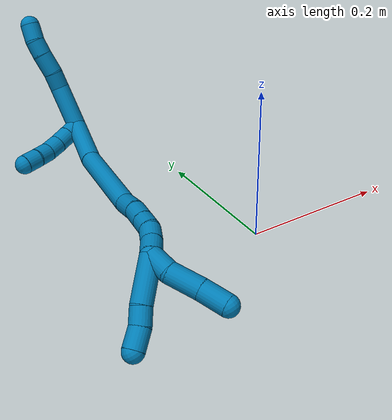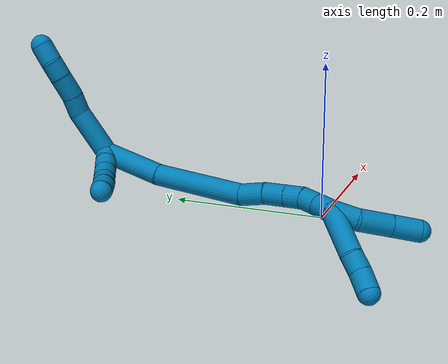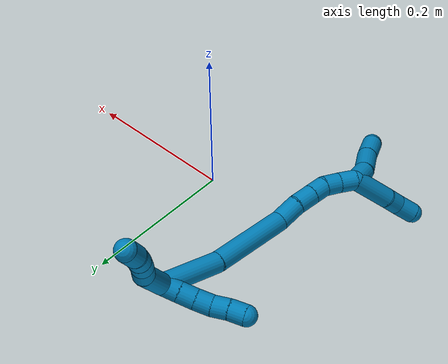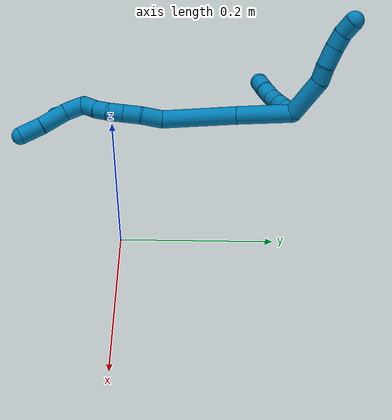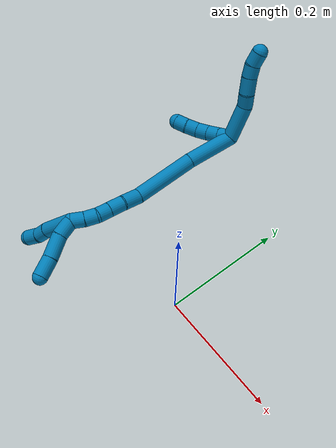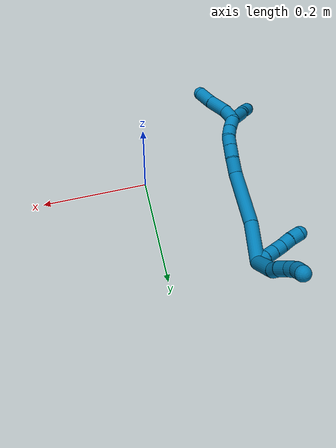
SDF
<sdf version="1.7">
 <world name="default">
  <model name="9">
   <static>0</static>
   <link name="9">
    <collision name="collision-cylinder-e_1_2_8">
     <pose>0.003138 0.00036 0.028895 -0.012471 0.108183 -0.000675</pose>
     <geometry><cylinder><radius>0.0125</radius><length>0.058133</length></cylinder></geometry>
     <surface>
      <friction><ode><mu>1.16</mu><mu2>1.16</mu2><slip1>0</slip1><slip2>0</slip2></ode></friction>
      <contact><ode><kp>1e+06</kp><kd>1</kd><max_vel>0</max_vel><min_depth>0.001</min_depth></ode></contact>
     </surface>
    </collision>
    <visual name="visual-cylinder-e_1_2_8">
     <pose>0.003138 0.00036 0.028895 -0.012471 0.108183 -0.000675</pose>
     <geometry><cylinder><radius>0.0125</radius><length>0.058133</length></cylinder></geometry>
     <material><ambient>0 0.490196 0.709804 1</ambient></material>
    </visual>
    <collision name="collision-cylinder-e_2_8_9">
     <pose>0.006976 -0.002795 0.068406 0.31981 0.062414 0.010069</pose>
     <geometry><cylinder><radius>0.0125</radius><length>0.022412</length></cylinder></geometry>
     <surface>
      <friction><ode><mu>1.16</mu><mu2>1.16</mu2><slip1>0</slip1><slip2>0</slip2></ode></friction>
      <contact><ode><kp>1e+06</kp><kd>1</kd><max_vel>0</max_vel><min_depth>0.001</min_depth></ode></contact>
     </surface>
    </collision>
    <visual name="visual-cylinder-e_2_8_9">
     <pose>0.006976 -0.002795 0.068406 0.31981 0.062414 0.010069</pose>
     <geometry><cylinder><radius>0.0125</radius><length>0.022412</length></cylinder></geometry>
     <material><ambient>0 0.490196 0.709804 1</ambient></material>
    </visual>
    <collision name="collision-cylinder-e_3_9_10">
     <pose>0.00706 -0.00902 0.09242 0.199462 -0.044937 -0.004497</pose>
     <geometry><cylinder><radius>0.0125</radius><length>0.027364</length></cylinder></geometry>
     <surface>
      <friction><ode><mu>1.16</mu><mu2>1.16</mu2><slip1>0</slip1><slip2>0</slip2></ode></friction>
      <contact><ode><kp>1e+06</kp><kd>1</kd><max_vel>0</max_vel><min_depth>0.001</min_depth></ode></contact>
     </surface>
    </collision>
    <visual name="visual-cylinder-e_3_9_10">
     <pose>0.00706 -0.00902 0.09242 0.199462 -0.044937 -0.004497</pose>
     <geometry><cylinder><radius>0.0125</radius><length>0.027364</length></cylinder></geometry>
     <material><ambient>0 0.490196 0.709804 1</ambient></material>
    </visual>
    <collision name="collision-cylinder-e_4_10_11">
     <pose>0.006756 -0.013155 0.11582 0.141739 0.030707 0.00218</pose>
     <geometry><cylinder><radius>0.0125</radius><length>0.020218</length></cylinder></geometry>
     <surface>
      <friction><ode><mu>1.16</mu><mu2>1.16</mu2><slip1>0</slip1><slip2>0</slip2></ode></friction>
      <contact><ode><kp>1e+06</kp><kd>1</kd><max_vel>0</max_vel><min_depth>0.001</min_depth></ode></contact>
     </surface>
    </collision>
    <visual name="visual-cylinder-e_4_10_11">
     <pose>0.006756 -0.013155 0.11582 0.141739 0.030707 0.00218</pose>
     <geometry><cylinder><radius>0.0125</radius><length>0.020218</length></cylinder></geometry>
     <material><ambient>0 0.490196 0.709804 1</ambient></material>
    </visual>
    <collision name="collision-cylinder-e_5_11_6">
     <pose>0.009525 -0.014323 0.136477 -0.024419 0.226748 -0.002781</pose>
     <geometry><cylinder><radius>0.0125</radius><length>0.021873</length></cylinder></geometry>
     <surface>
      <friction><ode><mu>1.16</mu><mu2>1.16</mu2><slip1>0</slip1><slip2>0</slip2></ode></friction>
      <contact><ode><kp>1e+06</kp><kd>1</kd><max_vel>0</max_vel><min_depth>0.001</min_depth></ode></contact>
     </surface>
    </collision>
    <visual name="visual-cylinder-e_5_11_6">
     <pose>0.009525 -0.014323 0.136477 -0.024419 0.226748 -0.002781</pose>
     <geometry><cylinder><radius>0.0125</radius><length>0.021873</length></cylinder></geometry>
     <material><ambient>0 0.490196 0.709804 1</ambient></material>
    </visual>
    <collision name="collision-cylinder-e_1_2_12">
     <pose>-0.008931 -0.00388 -0.002275 2.10118 -1.10429 -1.64348</pose>
     <geometry><cylinder><radius>0.0125</radius><length>0.02</length></cylinder></geometry>
     <surface>
      <friction><ode><mu>1.16</mu><mu2>1.16</mu2><slip1>0</slip1><slip2>0</slip2></ode></friction>
      <contact><ode><kp>1e+06</kp><kd>1</kd><max_vel>0</max_vel><min_depth>0.001</min_depth></ode></contact>
     </surface>
    </collision>
    <visual name="visual-cylinder-e_1_2_12">
     <pose>-0.008931 -0.00388 -0.002275 2.10118 -1.10429 -1.64348</pose>
     <geometry><cylinder><radius>0.0125</radius><length>0.02</length></cylinder></geometry>
     <material><ambient>0 0.490196 0.709804 1</ambient></material>
    </visual>
    <collision name="collision-cylinder-e_2_12_13">
     <pose>-0.026752 -0.011717 -0.006857 2.09845 -1.09496 -1.62988</pose>
     <geometry><cylinder><radius>0.0125</radius><length>0.02</length></cylinder></geometry>
     <surface>
      <friction><ode><mu>1.16</mu><mu2>1.16</mu2><slip1>0</slip1><slip2>0</slip2></ode></friction>
      <contact><ode><kp>1e+06</kp><kd>1</kd><max_vel>0</max_vel><min_depth>0.001</min_depth></ode></contact>
     </surface>
    </collision>
    <visual name="visual-cylinder-e_2_12_13">
     <pose>-0.026752 -0.011717 -0.006857 2.09845 -1.09496 -1.62988</pose>
     <geometry><cylinder><radius>0.0125</radius><length>0.02</length></cylinder></geometry>
     <material><ambient>0 0.490196 0.709804 1</ambient></material>
    </visual>
    <collision name="collision-cylinder-e_3_13_14">
     <pose>-0.044446 -0.020102 -0.01086 1.93671 -1.0769 -1.43033</pose>
     <geometry><cylinder><radius>0.0125</radius><length>0.02</length></cylinder></geometry>
     <surface>
      <friction><ode><mu>1.16</mu><mu2>1.16</mu2><slip1>0</slip1><slip2>0</slip2></ode></friction>
      <contact><ode><kp>1e+06</kp><kd>1</kd><max_vel>0</max_vel><min_depth>0.001</min_depth></ode></contact>
     </surface>
    </collision>
    <visual name="visual-cylinder-e_3_13_14">
     <pose>-0.044446 -0.020102 -0.01086 1.93671 -1.0769 -1.43033</pose>
     <geometry><cylinder><radius>0.0125</radius><length>0.02</length></cylinder></geometry>
     <material><ambient>0 0.490196 0.709804 1</ambient></material>
    </visual>
    <collision name="collision-cylinder-e_4_14_15">
     <pose>-0.061413 -0.030301 -0.012811 1.61502 -0.954791 -0.991359</pose>
     <geometry><cylinder><radius>0.0125</radius><length>0.02</length></cylinder></geometry>
     <surface>
      <friction><ode><mu>1.16</mu><mu2>1.16</mu2><slip1>0</slip1><slip2>0</slip2></ode></friction>
      <contact><ode><kp>1e+06</kp><kd>1</kd><max_vel>0</max_vel><min_depth>0.001</min_depth></ode></contact>
     </surface>
    </collision>
    <visual name="visual-cylinder-e_4_14_15">
     <pose>-0.061413 -0.030301 -0.012811 1.61502 -0.954791 -0.991359</pose>
     <geometry><cylinder><radius>0.0125</radius><length>0.02</length></cylinder></geometry>
     <material><ambient>0 0.490196 0.709804 1</ambient></material>
    </visual>
    <collision name="collision-cylinder-e_5_15_5">
     <pose>-0.0784 -0.040775 -0.013115 1.58109 -1.08117 -1.09028</pose>
     <geometry><cylinder><radius>0.0125</radius><length>0.02</length></cylinder></geometry>
     <surface>
      <friction><ode><mu>1.16</mu><mu2>1.16</mu2><slip1>0</slip1><slip2>0</slip2></ode></friction>
      <contact><ode><kp>1e+06</kp><kd>1</kd><max_vel>0</max_vel><min_depth>0.001</min_depth></ode></contact>
     </surface>
    </collision>
    <visual name="visual-cylinder-e_5_15_5">
     <pose>-0.0784 -0.040775 -0.013115 1.58109 -1.08117 -1.09028</pose>
     <geometry><cylinder><radius>0.0125</radius><length>0.02</length></cylinder></geometry>
     <material><ambient>0 0.490196 0.709804 1</ambient></material>
    </visual>
    <collision name="collision-cylinder-e_1_2_16">
     <pose>-0.006069 -0.028876 -0.024798 2.28037 -0.158106 -0.341543</pose>
     <geometry><cylinder><radius>0.0125</radius><length>0.077088</length></cylinder></geometry>
     <surface>
      <friction><ode><mu>1.16</mu><mu2>1.16</mu2><slip1>0</slip1><slip2>0</slip2></ode></friction>
      <contact><ode><kp>1e+06</kp><kd>1</kd><max_vel>0</max_vel><min_depth>0.001</min_depth></ode></contact>
     </surface>
    </collision>
    <visual name="visual-cylinder-e_1_2_16">
     <pose>-0.006069 -0.028876 -0.024798 2.28037 -0.158106 -0.341543</pose>
     <geometry><cylinder><radius>0.0125</radius><length>0.077088</length></cylinder></geometry>
     <material><ambient>0 0.490196 0.709804 1</ambient></material>
    </visual>
    <collision name="collision-cylinder-e_2_16_17">
     <pose>-0.011598 -0.098889 -0.08167 2.23302 0.010337 0.021166</pose>
     <geometry><cylinder><radius>0.0125</radius><length>0.10433</length></cylinder></geometry>
     <surface>
      <friction><ode><mu>1.16</mu><mu2>1.16</mu2><slip1>0</slip1><slip2>0</slip2></ode></friction>
      <contact><ode><kp>1e+06</kp><kd>1</kd><max_vel>0</max_vel><min_depth>0.001</min_depth></ode></contact>
     </surface>
    </collision>
    <visual name="visual-cylinder-e_2_16_17">
     <pose>-0.011598 -0.098889 -0.08167 2.23302 0.010337 0.021166</pose>
     <geometry><cylinder><radius>0.0125</radius><length>0.10433</length></cylinder></geometry>
     <material><ambient>0 0.490196 0.709804 1</ambient></material>
    </visual>
    <collision name="collision-cylinder-e_3_17_18">
     <pose>-0.009804 -0.154024 -0.119239 1.9449 0.083262 0.122056</pose>
     <geometry><cylinder><radius>0.0125</radius><length>0.030182</length></cylinder></geometry>
     <surface>
      <friction><ode><mu>1.16</mu><mu2>1.16</mu2><slip1>0</slip1><slip2>0</slip2></ode></friction>
      <contact><ode><kp>1e+06</kp><kd>1</kd><max_vel>0</max_vel><min_depth>0.001</min_depth></ode></contact>
     </surface>
    </collision>
    <visual name="visual-cylinder-e_3_17_18">
     <pose>-0.009804 -0.154024 -0.119239 1.9449 0.083262 0.122056</pose>
     <geometry><cylinder><radius>0.0125</radius><length>0.030182</length></cylinder></geometry>
     <material><ambient>0 0.490196 0.709804 1</ambient></material>
    </visual>
    <collision name="collision-cylinder-e_4_18_19">
     <pose>-0.008878 -0.179001 -0.130735 2.071 -0.026342 -0.044414</pose>
     <geometry><cylinder><radius>0.0125</radius><length>0.025031</length></cylinder></geometry>
     <surface>
      <friction><ode><mu>1.16</mu><mu2>1.16</mu2><slip1>0</slip1><slip2>0</slip2></ode></friction>
      <contact><ode><kp>1e+06</kp><kd>1</kd><max_vel>0</max_vel><min_depth>0.001</min_depth></ode></contact>
     </surface>
    </collision>
    <visual name="visual-cylinder-e_4_18_19">
     <pose>-0.008878 -0.179001 -0.130735 2.071 -0.026342 -0.044414</pose>
     <geometry><cylinder><radius>0.0125</radius><length>0.025031</length></cylinder></geometry>
     <material><ambient>0 0.490196 0.709804 1</ambient></material>
    </visual>
    <collision name="collision-cylinder-e_5_19_20">
     <pose>-0.009485 -0.198872 -0.141622 2.0733 -0.027329 -0.046198</pose>
     <geometry><cylinder><radius>0.0125</radius><length>0.020302</length></cylinder></geometry>
     <surface>
      <friction><ode><mu>1.16</mu><mu2>1.16</mu2><slip1>0</slip1><slip2>0</slip2></ode></friction>
      <contact><ode><kp>1e+06</kp><kd>1</kd><max_vel>0</max_vel><min_depth>0.001</min_depth></ode></contact>
     </surface>
    </collision>
    <visual name="visual-cylinder-e_5_19_20">
     <pose>-0.009485 -0.198872 -0.141622 2.0733 -0.027329 -0.046198</pose>
     <geometry><cylinder><radius>0.0125</radius><length>0.020302</length></cylinder></geometry>
     <material><ambient>0 0.490196 0.709804 1</ambient></material>
    </visual>
    <collision name="collision-cylinder-e_6_20_21">
     <pose>-0.013358 -0.21601 -0.151785 2.13999 -0.352019 -0.628344</pose>
     <geometry><cylinder><radius>0.0125</radius><length>0.020856</length></cylinder></geometry>
     <surface>
      <friction><ode><mu>1.16</mu><mu2>1.16</mu2><slip1>0</slip1><slip2>0</slip2></ode></friction>
      <contact><ode><kp>1e+06</kp><kd>1</kd><max_vel>0</max_vel><min_depth>0.001</min_depth></ode></contact>
     </surface>
    </collision>
    <visual name="visual-cylinder-e_6_20_21">
     <pose>-0.013358 -0.21601 -0.151785 2.13999 -0.352019 -0.628344</pose>
     <geometry><cylinder><radius>0.0125</radius><length>0.020856</length></cylinder></geometry>
     <material><ambient>0 0.490196 0.709804 1</ambient></material>
    </visual>
    <collision name="collision-cylinder-e_7_21_1">
     <pose>-0.021848 -0.233227 -0.161407 2.0219 -0.456407 -0.709765</pose>
     <geometry><cylinder><radius>0.0125</radius><length>0.022211</length></cylinder></geometry>
     <surface>
      <friction><ode><mu>1.16</mu><mu2>1.16</mu2><slip1>0</slip1><slip2>0</slip2></ode></friction>
      <contact><ode><kp>1e+06</kp><kd>1</kd><max_vel>0</max_vel><min_depth>0.001</min_depth></ode></contact>
     </surface>
    </collision>
    <visual name="visual-cylinder-e_7_21_1">
     <pose>-0.021848 -0.233227 -0.161407 2.0219 -0.456407 -0.709765</pose>
     <geometry><cylinder><radius>0.0125</radius><length>0.022211</length></cylinder></geometry>
     <material><ambient>0 0.490196 0.709804 1</ambient></material>
    </visual>
    <collision name="collision-cylinder-e_1_1_22">
     <pose>-0.044911 -0.249487 -0.184313 2.76741 -0.738938 -2.23223</pose>
     <geometry><cylinder><radius>0.0125</radius><length>0.05395</length></cylinder></geometry>
     <surface>
      <friction><ode><mu>1.16</mu><mu2>1.16</mu2><slip1>0</slip1><slip2>0</slip2></ode></friction>
      <contact><ode><kp>1e+06</kp><kd>1</kd><max_vel>0</max_vel><min_depth>0.001</min_depth></ode></contact>
     </surface>
    </collision>
    <visual name="visual-cylinder-e_1_1_22">
     <pose>-0.044911 -0.249487 -0.184313 2.76741 -0.738938 -2.23223</pose>
     <geometry><cylinder><radius>0.0125</radius><length>0.05395</length></cylinder></geometry>
     <material><ambient>0 0.490196 0.709804 1</ambient></material>
    </visual>
    <collision name="collision-cylinder-e_2_22_23">
     <pose>-0.068992 -0.259239 -0.211195 2.85371 -0.598128 -2.26267</pose>
     <geometry><cylinder><radius>0.0125</radius><length>0.021005</length></cylinder></geometry>
     <surface>
      <friction><ode><mu>1.16</mu><mu2>1.16</mu2><slip1>0</slip1><slip2>0</slip2></ode></friction>
      <contact><ode><kp>1e+06</kp><kd>1</kd><max_vel>0</max_vel><min_depth>0.001</min_depth></ode></contact>
     </surface>
    </collision>
    <visual name="visual-cylinder-e_2_22_23">
     <pose>-0.068992 -0.259239 -0.211195 2.85371 -0.598128 -2.26267</pose>
     <geometry><cylinder><radius>0.0125</radius><length>0.021005</length></cylinder></geometry>
     <material><ambient>0 0.490196 0.709804 1</ambient></material>
    </visual>
    <collision name="collision-cylinder-e_3_23_4">
     <pose>-0.08408 -0.265288 -0.22725 2.70756 -0.822126 -2.20499</pose>
     <geometry><cylinder><radius>0.0125</radius><length>0.025045</length></cylinder></geometry>
     <surface>
      <friction><ode><mu>1.16</mu><mu2>1.16</mu2><slip1>0</slip1><slip2>0</slip2></ode></friction>
      <contact><ode><kp>1e+06</kp><kd>1</kd><max_vel>0</max_vel><min_depth>0.001</min_depth></ode></contact>
     </surface>
    </collision>
    <visual name="visual-cylinder-e_3_23_4">
     <pose>-0.08408 -0.265288 -0.22725 2.70756 -0.822126 -2.20499</pose>
     <geometry><cylinder><radius>0.0125</radius><length>0.025045</length></cylinder></geometry>
     <material><ambient>0 0.490196 0.709804 1</ambient></material>
    </visual>
    <collision name="collision-cylinder-e_1_1_24">
     <pose>-0.024052 -0.250534 -0.176931 2.50088 0.190623 0.561089</pose>
     <geometry><cylinder><radius>0.0125</radius><length>0.028403</length></cylinder></geometry>
     <surface>
      <friction><ode><mu>1.16</mu><mu2>1.16</mu2><slip1>0</slip1><slip2>0</slip2></ode></friction>
      <contact><ode><kp>1e+06</kp><kd>1</kd><max_vel>0</max_vel><min_depth>0.001</min_depth></ode></contact>
     </surface>
    </collision>
    <visual name="visual-cylinder-e_1_1_24">
     <pose>-0.024052 -0.250534 -0.176931 2.50088 0.190623 0.561089</pose>
     <geometry><cylinder><radius>0.0125</radius><length>0.028403</length></cylinder></geometry>
     <material><ambient>0 0.490196 0.709804 1</ambient></material>
    </visual>
    <collision name="collision-cylinder-e_2_24_25">
     <pose>-0.012353 -0.267881 -0.202902 2.5944 0.479605 1.43342</pose>
     <geometry><cylinder><radius>0.0125</radius><length>0.039048</length></cylinder></geometry>
     <surface>
      <friction><ode><mu>1.16</mu><mu2>1.16</mu2><slip1>0</slip1><slip2>0</slip2></ode></friction>
      <contact><ode><kp>1e+06</kp><kd>1</kd><max_vel>0</max_vel><min_depth>0.001</min_depth></ode></contact>
     </surface>
    </collision>
    <visual name="visual-cylinder-e_2_24_25">
     <pose>-0.012353 -0.267881 -0.202902 2.5944 0.479605 1.43342</pose>
     <geometry><cylinder><radius>0.0125</radius><length>0.039048</length></cylinder></geometry>
     <material><ambient>0 0.490196 0.709804 1</ambient></material>
    </visual>
    <collision name="collision-cylinder-e_3_25_3">
     <pose>0.003022 -0.285652 -0.229844 2.51699 0.40188 1.12563</pose>
     <geometry><cylinder><radius>0.0125</radius><length>0.03255</length></cylinder></geometry>
     <surface>
      <friction><ode><mu>1.16</mu><mu2>1.16</mu2><slip1>0</slip1><slip2>0</slip2></ode></friction>
      <contact><ode><kp>1e+06</kp><kd>1</kd><max_vel>0</max_vel><min_depth>0.001</min_depth></ode></contact>
     </surface>
    </collision>
    <visual name="visual-cylinder-e_3_25_3">
     <pose>0.003022 -0.285652 -0.229844 2.51699 0.40188 1.12563</pose>
     <geometry><cylinder><radius>0.0125</radius><length>0.03255</length></cylinder></geometry>
     <material><ambient>0 0.490196 0.709804 1</ambient></material>
    </visual>
    <collision name="collision-sphere-3">
     <pose>0.009388 -0.294411 -0.241994 0 -0 0</pose>
     <geometry><sphere><radius>0.0125</radius></sphere></geometry>
     <surface>
      <friction><ode><mu>1.16</mu><mu2>1.16</mu2><slip1>0</slip1><slip2>0</slip2></ode></friction>
      <contact><ode><kp>1e+06</kp><kd>1</kd><max_vel>0</max_vel><min_depth>0.001</min_depth></ode></contact>
     </surface>
    </collision>
    <visual name="visual-sphere-3">
     <pose>0.009388 -0.294411 -0.241994 0 -0 0</pose>
     <geometry><sphere><radius>0.0125</radius></sphere></geometry>
     <material><ambient>0 0.490196 0.709804 1</ambient></material>
    </visual>
    <collision name="collision-sphere-25">
     <pose>-0.003344 -0.276894 -0.217694 0 -0 0</pose>
     <geometry><sphere><radius>0.0125</radius></sphere></geometry>
     <surface>
      <friction><ode><mu>1.16</mu><mu2>1.16</mu2><slip1>0</slip1><slip2>0</slip2></ode></friction>
      <contact><ode><kp>1e+06</kp><kd>1</kd><max_vel>0</max_vel><min_depth>0.001</min_depth></ode></contact>
     </surface>
    </collision>
    <visual name="visual-sphere-25">
     <pose>-0.003344 -0.276894 -0.217694 0 -0 0</pose>
     <geometry><sphere><radius>0.0125</radius></sphere></geometry>
     <material><ambient>0 0.490196 0.709804 1</ambient></material>
    </visual>
    <collision name="collision-sphere-24">
     <pose>-0.021361 -0.258869 -0.18811 0 -0 0</pose>
     <geometry><sphere><radius>0.0125</radius></sphere></geometry>
     <surface>
      <friction><ode><mu>1.16</mu><mu2>1.16</mu2><slip1>0</slip1><slip2>0</slip2></ode></friction>
      <contact><ode><kp>1e+06</kp><kd>1</kd><max_vel>0</max_vel><min_depth>0.001</min_depth></ode></contact>
     </surface>
    </collision>
    <visual name="visual-sphere-24">
     <pose>-0.021361 -0.258869 -0.18811 0 -0 0</pose>
     <geometry><sphere><radius>0.0125</radius></sphere></geometry>
     <material><ambient>0 0.490196 0.709804 1</ambient></material>
    </visual>
    <collision name="collision-sphere-4">
     <pose>-0.093254 -0.268873 -0.234983 0 -0 0</pose>
     <geometry><sphere><radius>0.0125</radius></sphere></geometry>
     <surface>
      <friction><ode><mu>1.16</mu><mu2>1.16</mu2><slip1>0</slip1><slip2>0</slip2></ode></friction>
      <contact><ode><kp>1e+06</kp><kd>1</kd><max_vel>0</max_vel><min_depth>0.001</min_depth></ode></contact>
     </surface>
    </collision>
    <visual name="visual-sphere-4">
     <pose>-0.093254 -0.268873 -0.234983 0 -0 0</pose>
     <geometry><sphere><radius>0.0125</radius></sphere></geometry>
     <material><ambient>0 0.490196 0.709804 1</ambient></material>
    </visual>
    <collision name="collision-sphere-23">
     <pose>-0.074906 -0.261704 -0.219517 0 -0 0</pose>
     <geometry><sphere><radius>0.0125</radius></sphere></geometry>
     <surface>
      <friction><ode><mu>1.16</mu><mu2>1.16</mu2><slip1>0</slip1><slip2>0</slip2></ode></friction>
      <contact><ode><kp>1e+06</kp><kd>1</kd><max_vel>0</max_vel><min_depth>0.001</min_depth></ode></contact>
     </surface>
    </collision>
    <visual name="visual-sphere-23">
     <pose>-0.074906 -0.261704 -0.219517 0 -0 0</pose>
     <geometry><sphere><radius>0.0125</radius></sphere></geometry>
     <material><ambient>0 0.490196 0.709804 1</ambient></material>
    </visual>
    <collision name="collision-sphere-22">
     <pose>-0.063078 -0.256775 -0.202872 0 -0 0</pose>
     <geometry><sphere><radius>0.0125</radius></sphere></geometry>
     <surface>
      <friction><ode><mu>1.16</mu><mu2>1.16</mu2><slip1>0</slip1><slip2>0</slip2></ode></friction>
      <contact><ode><kp>1e+06</kp><kd>1</kd><max_vel>0</max_vel><min_depth>0.001</min_depth></ode></contact>
     </surface>
    </collision>
    <visual name="visual-sphere-22">
     <pose>-0.063078 -0.256775 -0.202872 0 -0 0</pose>
     <geometry><sphere><radius>0.0125</radius></sphere></geometry>
     <material><ambient>0 0.490196 0.709804 1</ambient></material>
    </visual>
    <collision name="collision-sphere-1">
     <pose>-0.026743 -0.242199 -0.165753 0 -0 0</pose>
     <geometry><sphere><radius>0.0125</radius></sphere></geometry>
     <surface>
      <friction><ode><mu>1.16</mu><mu2>1.16</mu2><slip1>0</slip1><slip2>0</slip2></ode></friction>
      <contact><ode><kp>1e+06</kp><kd>1</kd><max_vel>0</max_vel><min_depth>0.001</min_depth></ode></contact>
     </surface>
    </collision>
    <visual name="visual-sphere-1">
     <pose>-0.026743 -0.242199 -0.165753 0 -0 0</pose>
     <geometry><sphere><radius>0.0125</radius></sphere></geometry>
     <material><ambient>0 0.490196 0.709804 1</ambient></material>
    </visual>
    <collision name="collision-sphere-21">
     <pose>-0.016954 -0.224256 -0.157061 0 -0 0</pose>
     <geometry><sphere><radius>0.0125</radius></sphere></geometry>
     <surface>
      <friction><ode><mu>1.16</mu><mu2>1.16</mu2><slip1>0</slip1><slip2>0</slip2></ode></friction>
      <contact><ode><kp>1e+06</kp><kd>1</kd><max_vel>0</max_vel><min_depth>0.001</min_depth></ode></contact>
     </surface>
    </collision>
    <visual name="visual-sphere-21">
     <pose>-0.016954 -0.224256 -0.157061 0 -0 0</pose>
     <geometry><sphere><radius>0.0125</radius></sphere></geometry>
     <material><ambient>0 0.490196 0.709804 1</ambient></material>
    </visual>
    <collision name="collision-sphere-6">
     <pose>0.011983 -0.014062 0.14713 0 -0 0</pose>
     <geometry><sphere><radius>0.0125</radius></sphere></geometry>
     <surface>
      <friction><ode><mu>1.16</mu><mu2>1.16</mu2><slip1>0</slip1><slip2>0</slip2></ode></friction>
      <contact><ode><kp>1e+06</kp><kd>1</kd><max_vel>0</max_vel><min_depth>0.001</min_depth></ode></contact>
     </surface>
    </collision>
    <visual name="visual-sphere-6">
     <pose>0.011983 -0.014062 0.14713 0 -0 0</pose>
     <geometry><sphere><radius>0.0125</radius></sphere></geometry>
     <material><ambient>0 0.490196 0.709804 1</ambient></material>
    </visual>
    <collision name="collision-sphere-11">
     <pose>0.007066 -0.014583 0.125823 0 -0 0</pose>
     <geometry><sphere><radius>0.0125</radius></sphere></geometry>
     <surface>
      <friction><ode><mu>1.16</mu><mu2>1.16</mu2><slip1>0</slip1><slip2>0</slip2></ode></friction>
      <contact><ode><kp>1e+06</kp><kd>1</kd><max_vel>0</max_vel><min_depth>0.001</min_depth></ode></contact>
     </surface>
    </collision>
    <visual name="visual-sphere-11">
     <pose>0.007066 -0.014583 0.125823 0 -0 0</pose>
     <geometry><sphere><radius>0.0125</radius></sphere></geometry>
     <material><ambient>0 0.490196 0.709804 1</ambient></material>
    </visual>
    <collision name="collision-sphere-10">
     <pose>0.006445 -0.011728 0.105818 0 -0 0</pose>
     <geometry><sphere><radius>0.0125</radius></sphere></geometry>
     <surface>
      <friction><ode><mu>1.16</mu><mu2>1.16</mu2><slip1>0</slip1><slip2>0</slip2></ode></friction>
      <contact><ode><kp>1e+06</kp><kd>1</kd><max_vel>0</max_vel><min_depth>0.001</min_depth></ode></contact>
     </surface>
    </collision>
    <visual name="visual-sphere-10">
     <pose>0.006445 -0.011728 0.105818 0 -0 0</pose>
     <geometry><sphere><radius>0.0125</radius></sphere></geometry>
     <material><ambient>0 0.490196 0.709804 1</ambient></material>
    </visual>
    <collision name="collision-sphere-9">
     <pose>0.007675 -0.006311 0.079023 0 -0 0</pose>
     <geometry><sphere><radius>0.0125</radius></sphere></geometry>
     <surface>
      <friction><ode><mu>1.16</mu><mu2>1.16</mu2><slip1>0</slip1><slip2>0</slip2></ode></friction>
      <contact><ode><kp>1e+06</kp><kd>1</kd><max_vel>0</max_vel><min_depth>0.001</min_depth></ode></contact>
     </surface>
    </collision>
    <visual name="visual-sphere-9">
     <pose>0.007675 -0.006311 0.079023 0 -0 0</pose>
     <geometry><sphere><radius>0.0125</radius></sphere></geometry>
     <material><ambient>0 0.490196 0.709804 1</ambient></material>
    </visual>
    <collision name="collision-sphere-2">
     <geometry><sphere><radius>0.0125</radius></sphere></geometry>
     <surface>
      <friction><ode><mu>1.16</mu><mu2>1.16</mu2><slip1>0</slip1><slip2>0</slip2></ode></friction>
      <contact><ode><kp>1e+06</kp><kd>1</kd><max_vel>0</max_vel><min_depth>0.001</min_depth></ode></contact>
     </surface>
    </collision>
    <visual name="visual-sphere-2">
     <geometry><sphere><radius>0.0125</radius></sphere></geometry>
     <material><ambient>0 0.490196 0.709804 1</ambient></material>
    </visual>
    <collision name="collision-sphere-19">
     <pose>-0.009208 -0.189979 -0.136735 0 -0 0</pose>
     <geometry><sphere><radius>0.0125</radius></sphere></geometry>
     <surface>
      <friction><ode><mu>1.16</mu><mu2>1.16</mu2><slip1>0</slip1><slip2>0</slip2></ode></friction>
      <contact><ode><kp>1e+06</kp><kd>1</kd><max_vel>0</max_vel><min_depth>0.001</min_depth></ode></contact>
     </surface>
    </collision>
    <visual name="visual-sphere-19">
     <pose>-0.009208 -0.189979 -0.136735 0 -0 0</pose>
     <geometry><sphere><radius>0.0125</radius></sphere></geometry>
     <material><ambient>0 0.490196 0.709804 1</ambient></material>
    </visual>
    <collision name="collision-sphere-8">
     <pose>0.006277 0.000721 0.057789 0 -0 0</pose>
     <geometry><sphere><radius>0.0125</radius></sphere></geometry>
     <surface>
      <friction><ode><mu>1.16</mu><mu2>1.16</mu2><slip1>0</slip1><slip2>0</slip2></ode></friction>
      <contact><ode><kp>1e+06</kp><kd>1</kd><max_vel>0</max_vel><min_depth>0.001</min_depth></ode></contact>
     </surface>
    </collision>
    <visual name="visual-sphere-8">
     <pose>0.006277 0.000721 0.057789 0 -0 0</pose>
     <geometry><sphere><radius>0.0125</radius></sphere></geometry>
     <material><ambient>0 0.490196 0.709804 1</ambient></material>
    </visual>
    <collision name="collision-sphere-12">
     <pose>-0.017863 -0.00776 -0.00455 0 -0 0</pose>
     <geometry><sphere><radius>0.0125</radius></sphere></geometry>
     <surface>
      <friction><ode><mu>1.16</mu><mu2>1.16</mu2><slip1>0</slip1><slip2>0</slip2></ode></friction>
      <contact><ode><kp>1e+06</kp><kd>1</kd><max_vel>0</max_vel><min_depth>0.001</min_depth></ode></contact>
     </surface>
    </collision>
    <visual name="visual-sphere-12">
     <pose>-0.017863 -0.00776 -0.00455 0 -0 0</pose>
     <geometry><sphere><radius>0.0125</radius></sphere></geometry>
     <material><ambient>0 0.490196 0.709804 1</ambient></material>
    </visual>
    <collision name="collision-sphere-13">
     <pose>-0.035641 -0.015675 -0.009163 0 -0 0</pose>
     <geometry><sphere><radius>0.0125</radius></sphere></geometry>
     <surface>
      <friction><ode><mu>1.16</mu><mu2>1.16</mu2><slip1>0</slip1><slip2>0</slip2></ode></friction>
      <contact><ode><kp>1e+06</kp><kd>1</kd><max_vel>0</max_vel><min_depth>0.001</min_depth></ode></contact>
     </surface>
    </collision>
    <visual name="visual-sphere-13">
     <pose>-0.035641 -0.015675 -0.009163 0 -0 0</pose>
     <geometry><sphere><radius>0.0125</radius></sphere></geometry>
     <material><ambient>0 0.490196 0.709804 1</ambient></material>
    </visual>
    <collision name="collision-sphere-14">
     <pose>-0.053251 -0.024528 -0.012556 0 -0 0</pose>
     <geometry><sphere><radius>0.0125</radius></sphere></geometry>
     <surface>
      <friction><ode><mu>1.16</mu><mu2>1.16</mu2><slip1>0</slip1><slip2>0</slip2></ode></friction>
      <contact><ode><kp>1e+06</kp><kd>1</kd><max_vel>0</max_vel><min_depth>0.001</min_depth></ode></contact>
     </surface>
    </collision>
    <visual name="visual-sphere-14">
     <pose>-0.053251 -0.024528 -0.012556 0 -0 0</pose>
     <geometry><sphere><radius>0.0125</radius></sphere></geometry>
     <material><ambient>0 0.490196 0.709804 1</ambient></material>
    </visual>
    <collision name="collision-sphere-15">
     <pose>-0.069575 -0.036073 -0.013067 0 -0 0</pose>
     <geometry><sphere><radius>0.0125</radius></sphere></geometry>
     <surface>
      <friction><ode><mu>1.16</mu><mu2>1.16</mu2><slip1>0</slip1><slip2>0</slip2></ode></friction>
      <contact><ode><kp>1e+06</kp><kd>1</kd><max_vel>0</max_vel><min_depth>0.001</min_depth></ode></contact>
     </surface>
    </collision>
    <visual name="visual-sphere-15">
     <pose>-0.069575 -0.036073 -0.013067 0 -0 0</pose>
     <geometry><sphere><radius>0.0125</radius></sphere></geometry>
     <material><ambient>0 0.490196 0.709804 1</ambient></material>
    </visual>
    <collision name="collision-sphere-5">
     <pose>-0.087225 -0.045478 -0.013163 0 -0 0</pose>
     <geometry><sphere><radius>0.0125</radius></sphere></geometry>
     <surface>
      <friction><ode><mu>1.16</mu><mu2>1.16</mu2><slip1>0</slip1><slip2>0</slip2></ode></friction>
      <contact><ode><kp>1e+06</kp><kd>1</kd><max_vel>0</max_vel><min_depth>0.001</min_depth></ode></contact>
     </surface>
    </collision>
    <visual name="visual-sphere-5">
     <pose>-0.087225 -0.045478 -0.013163 0 -0 0</pose>
     <geometry><sphere><radius>0.0125</radius></sphere></geometry>
     <material><ambient>0 0.490196 0.709804 1</ambient></material>
    </visual>
    <collision name="collision-sphere-16">
     <pose>-0.012137 -0.057752 -0.049597 0 -0 0</pose>
     <geometry><sphere><radius>0.0125</radius></sphere></geometry>
     <surface>
      <friction><ode><mu>1.16</mu><mu2>1.16</mu2><slip1>0</slip1><slip2>0</slip2></ode></friction>
      <contact><ode><kp>1e+06</kp><kd>1</kd><max_vel>0</max_vel><min_depth>0.001</min_depth></ode></contact>
     </surface>
    </collision>
    <visual name="visual-sphere-16">
     <pose>-0.012137 -0.057752 -0.049597 0 -0 0</pose>
     <geometry><sphere><radius>0.0125</radius></sphere></geometry>
     <material><ambient>0 0.490196 0.709804 1</ambient></material>
    </visual>
    <collision name="collision-sphere-17">
     <pose>-0.011059 -0.140026 -0.113743 0 -0 0</pose>
     <geometry><sphere><radius>0.0125</radius></sphere></geometry>
     <surface>
      <friction><ode><mu>1.16</mu><mu2>1.16</mu2><slip1>0</slip1><slip2>0</slip2></ode></friction>
      <contact><ode><kp>1e+06</kp><kd>1</kd><max_vel>0</max_vel><min_depth>0.001</min_depth></ode></contact>
     </surface>
    </collision>
    <visual name="visual-sphere-17">
     <pose>-0.011059 -0.140026 -0.113743 0 -0 0</pose>
     <geometry><sphere><radius>0.0125</radius></sphere></geometry>
     <material><ambient>0 0.490196 0.709804 1</ambient></material>
    </visual>
    <collision name="collision-sphere-18">
     <pose>-0.008549 -0.168023 -0.124735 0 -0 0</pose>
     <geometry><sphere><radius>0.0125</radius></sphere></geometry>
     <surface>
      <friction><ode><mu>1.16</mu><mu2>1.16</mu2><slip1>0</slip1><slip2>0</slip2></ode></friction>
      <contact><ode><kp>1e+06</kp><kd>1</kd><max_vel>0</max_vel><min_depth>0.001</min_depth></ode></contact>
     </surface>
    </collision>
    <visual name="visual-sphere-18">
     <pose>-0.008549 -0.168023 -0.124735 0 -0 0</pose>
     <geometry><sphere><radius>0.0125</radius></sphere></geometry>
     <material><ambient>0 0.490196 0.709804 1</ambient></material>
    </visual>
    <collision name="collision-sphere-20">
     <pose>-0.009763 -0.207765 -0.14651 0 -0 0</pose>
     <geometry><sphere><radius>0.0125</radius></sphere></geometry>
     <surface>
      <friction><ode><mu>1.16</mu><mu2>1.16</mu2><slip1>0</slip1><slip2>0</slip2></ode></friction>
      <contact><ode><kp>1e+06</kp><kd>1</kd><max_vel>0</max_vel><min_depth>0.001</min_depth></ode></contact>
     </surface>
    </collision>
    <visual name="visual-sphere-20">
     <pose>-0.009763 -0.207765 -0.14651 0 -0 0</pose>
     <geometry><sphere><radius>0.0125</radius></sphere></geometry>
     <material><ambient>0 0.490196 0.709804 1</ambient></material>
    </visual>
    <inertial>
     <pose>-0.018292 -0.121096 -0.076373 0 -0 0</pose>
     <mass>0.75</mass>
     <inertia><ixx>0.000143</ixx><ixy>0</ixy><ixz>0</ixz><iyy>-9e-05</iyy><iyz>0</iyz><izz>0.000139</izz></inertia>
    </inertial>
   </link>
   <pose>-0.143013 0.229412 0.102008 -0.546833 -0.321825 -0.075045</pose>
  </model>
 </world>
</sdf>
